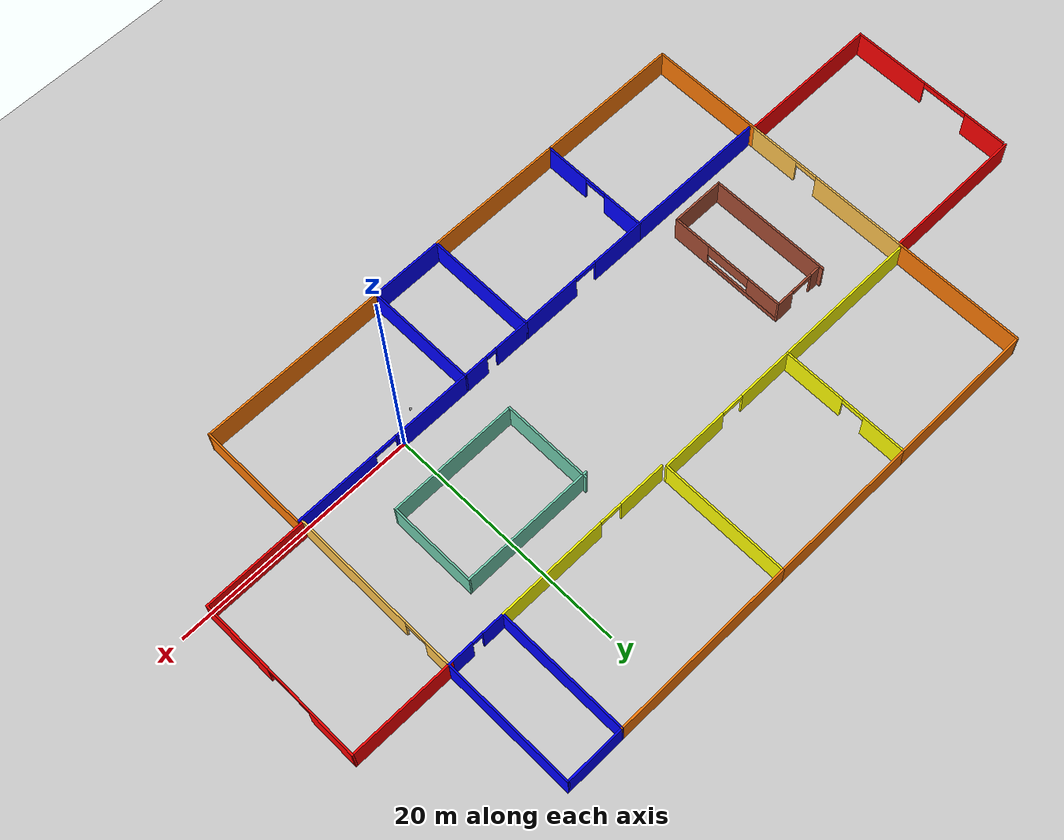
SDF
<sdf version="1.6">
 <world name="default">
  <light name="sun" type="directional">
   <pose>0 0 10 0 -0 0</pose>
   <diffuse>0.8 0.8 0.8 1</diffuse>
   <specular>0.2 0.2 0.2 1</specular>
   <attenuation>
    <range>1000</range>
    <constant>0.9</constant>
    <linear>0.01</linear>
    <quadratic>0.001</quadratic>
   </attenuation>
   <direction>-0.5 0.1 -0.9</direction>
  </light>
  <model name="ground_plane">
   <static>1</static>
   <link name="link">
    <collision name="collision">
     <geometry><plane><normal>0 0 1</normal><size>100 100</size></plane></geometry>
     <surface>
      <contact><collide_bitmask>65535</collide_bitmask></contact>
      <friction><ode><mu>100</mu><mu2>50</mu2></ode></friction>
     </surface>
    </collision>
    <visual name="visual">
     <cast_shadows>0</cast_shadows>
     <geometry><plane><normal>0 0 1</normal><size>100 100</size></plane></geometry>
     <material>
      <script><uri>file://media/materials/scripts/gazebo.material</uri><name>Gazebo/Grey</name></script>
     </material>
    </visual>
   </link>
  </model>
  <gravity>0 0 -9.8</gravity>
  <magnetic_field>6e-06 2.3e-05 -4.2e-05</magnetic_field>
  <atmosphere type="adiabatic"/>
  <physics name="default_physics" default="0" type="ode">
   <max_step_size>0.001</max_step_size>
   <real_time_factor>1</real_time_factor>
   <real_time_update_rate>1000</real_time_update_rate>
  </physics>
  <scene><ambient>0.4 0.4 0.4 1</ambient><background>0.7 0.7 0.7 1</background><shadows>1</shadows></scene>
  <spherical_coordinates>
   <surface_model>EARTH_WGS84</surface_model>
   <latitude_deg>0</latitude_deg>
   <longitude_deg>0</longitude_deg>
   <elevation>0</elevation>
   <heading_deg>0</heading_deg>
  </spherical_coordinates>
  <model name="office">
   <pose>-14.5662 8.1483 0 0 -0 0</pose>
   <link name="Wall_0">
    <collision name="Wall_0_Collision">
     <geometry><box><size>12 0.15 2.5</size></box></geometry>
     <pose>0 0 1.25 0 -0 0</pose>
    </collision>
    <visual name="Wall_0_Visual">
     <pose>0 0 1.25 0 -0 0</pose>
     <geometry><box><size>12 0.15 2.5</size></box></geometry>
     <material>
      <script><uri>file://media/materials/scripts/gazebo.material</uri><name>Gazebo/Grey</name></script>
      <ambient>1 0 0 1</ambient>
     </material>
     <meta><layer>0</layer></meta>
    </visual>
    <pose>-26.25 6.3 0 0 -0 0</pose>
   </link>
   <link name="Wall_1">
    <pose>-20.325 -0.75 0 0 0 -1.5708</pose>
    <visual name="Wall_1_Visual_0">
     <pose>-3.11197 0 1.25 0 -0 0</pose>
     <geometry><box><size>8.02606 0.15 2.5</size></box></geometry>
     <material>
      <script><uri>file://media/materials/scripts/gazebo.material</uri><name>Gazebo/Grey</name></script>
      <ambient>1 0.764706 0.305882 1</ambient>
     </material>
     <meta><layer>0</layer></meta>
    </visual>
    <collision name="Wall_1_Collision_0">
     <geometry><box><size>8.02606 0.15 2.5</size></box></geometry>
     <pose>-3.11197 0 1.25 0 -0 0</pose>
    </collision>
    <visual name="Wall_1_Visual_1">
     <pose>4.96303 0 1.25 0 -0 0</pose>
     <geometry><box><size>4.32394 0.15 2.5</size></box></geometry>
     <material>
      <script><uri>file://media/materials/scripts/gazebo.material</uri><name>Gazebo/Grey</name></script>
      <ambient>1 0.764706 0.305882 1</ambient>
     </material>
     <meta><layer>0</layer></meta>
    </visual>
    <collision name="Wall_1_Collision_1">
     <geometry><box><size>4.32394 0.15 2.5</size></box></geometry>
     <pose>4.96303 0 1.25 0 -0 0</pose>
    </collision>
    <visual name="Wall_1_Visual_2">
     <pose>1.85106 0 2.25 0 -0 0</pose>
     <geometry><box><size>1.9 0.15 0.5</size></box></geometry>
     <material>
      <script><uri>file://media/materials/scripts/gazebo.material</uri><name>Gazebo/Grey</name></script>
      <ambient>1 0.764706 0.305882 1</ambient>
     </material>
     <meta><layer>0</layer></meta>
    </visual>
    <collision name="Wall_1_Collision_2">
     <geometry><box><size>1.9 0.15 0.5</size></box></geometry>
     <pose>1.85106 0 2.25 0 -0 0</pose>
    </collision>
   </link>
   <link name="Wall_10">
    <collision name="Wall_10_Collision">
     <geometry><box><size>12.25 0.15 2.5</size></box></geometry>
     <pose>0 0 1.25 0 -0 0</pose>
    </collision>
    <visual name="Wall_10_Visual">
     <pose>0 0 1.25 0 -0 0</pose>
     <geometry><box><size>12.25 0.15 2.5</size></box></geometry>
     <material>
      <script><uri>file://media/materials/scripts/gazebo.material</uri><name>Gazebo/Grey</name></script>
      <ambient>0.996078 0.47451 0.0196078 1</ambient>
     </material>
     <meta><layer>0</layer></meta>
    </visual>
    <pose>-2.175 17.15 0 0 -0 0</pose>
   </link>
   <link name="Wall_11">
    <collision name="Wall_11_Collision">
     <geometry><box><size>10.75 0.15 2.5</size></box></geometry>
     <pose>0 0 1.25 0 -0 0</pose>
    </collision>
    <visual name="Wall_11_Visual">
     <pose>0 0 1.25 0 -0 0</pose>
     <geometry><box><size>10.75 0.15 2.5</size></box></geometry>
     <material>
      <script><uri>file://media/materials/scripts/gazebo.material</uri><name>Gazebo/Grey</name></script>
      <ambient>1 1 0 1</ambient>
     </material>
     <meta><layer>0</layer></meta>
    </visual>
    <pose>3.875 11.85 0 0 0 -1.5708</pose>
   </link>
   <link name="Wall_12">
    <pose>-2.175 6.55 0 0 -0 3.14159</pose>
    <visual name="Wall_12_Visual_0">
     <pose>-3.31471 0 1.25 0 -0 0</pose>
     <geometry><box><size>5.62058 0.15 2.5</size></box></geometry>
     <material>
      <script><uri>file://media/materials/scripts/gazebo.material</uri><name>Gazebo/Grey</name></script>
      <ambient>1 1 0 1</ambient>
     </material>
     <meta><layer>0</layer></meta>
    </visual>
    <collision name="Wall_12_Collision_0">
     <geometry><box><size>5.62058 0.15 2.5</size></box></geometry>
     <pose>-3.31471 0 1.25 0 -0 0</pose>
    </collision>
    <visual name="Wall_12_Visual_1">
     <pose>3.76029 0 1.25 0 -0 0</pose>
     <geometry><box><size>4.72942 0.15 2.5</size></box></geometry>
     <material>
      <script><uri>file://media/materials/scripts/gazebo.material</uri><name>Gazebo/Grey</name></script>
      <ambient>1 1 0 1</ambient>
     </material>
     <meta><layer>0</layer></meta>
    </visual>
    <collision name="Wall_12_Collision_1">
     <geometry><box><size>4.72942 0.15 2.5</size></box></geometry>
     <pose>3.76029 0 1.25 0 -0 0</pose>
    </collision>
    <visual name="Wall_12_Visual_2">
     <pose>0.44558 0 2.25 0 -0 0</pose>
     <geometry><box><size>1.9 0.15 0.5</size></box></geometry>
     <material>
      <script><uri>file://media/materials/scripts/gazebo.material</uri><name>Gazebo/Grey</name></script>
      <ambient>1 1 0 1</ambient>
     </material>
     <meta><layer>0</layer></meta>
    </visual>
    <collision name="Wall_12_Collision_2">
     <geometry><box><size>1.9 0.15 0.5</size></box></geometry>
     <pose>0.44558 0 2.25 0 -0 0</pose>
    </collision>
   </link>
   <link name="Wall_14">
    <collision name="Wall_14_Collision">
     <geometry><box><size>15.25 0.15 2.5</size></box></geometry>
     <pose>0 0 1.25 0 -0 0</pose>
    </collision>
    <visual name="Wall_14_Visual">
     <pose>0 0 1.25 0 -0 0</pose>
     <geometry><box><size>15.25 0.15 2.5</size></box></geometry>
     <material>
      <script><uri>file://media/materials/scripts/gazebo.material</uri><name>Gazebo/Grey</name></script>
      <ambient>0.996078 0.47451 0.0196078 1</ambient>
     </material>
     <meta><layer>0</layer></meta>
    </visual>
    <pose>11.425 17.15 0 0 -0 0</pose>
   </link>
   <link name="Wall_15">
    <collision name="Wall_15_Collision">
     <geometry><box><size>11 0.15 2.5</size></box></geometry>
     <pose>0 0 1.25 0 -0 0</pose>
    </collision>
    <visual name="Wall_15_Visual">
     <pose>0 0 1.25 0 -0 0</pose>
     <geometry><box><size>11 0.15 2.5</size></box></geometry>
     <material>
      <script><uri>file://media/materials/scripts/gazebo.material</uri><name>Gazebo/Grey</name></script>
      <ambient>0 0 1 1</ambient>
     </material>
     <meta><layer>0</layer></meta>
    </visual>
    <pose>18.975 11.725 0 0 0 -1.5708</pose>
   </link>
   <link name="Wall_17">
    <pose>11.55 6.3 0 0 -0 3.14159</pose>
    <visual name="Wall_17_Visual_0">
     <pose>-2.94841 0 1.25 0 -0 0</pose>
     <geometry><box><size>9.10319 0.15 2.5</size></box></geometry>
     <material>
      <script><uri>file://media/materials/scripts/gazebo.material</uri><name>Gazebo/Grey</name></script>
      <ambient>1 1 0 1</ambient>
     </material>
     <meta><layer>0</layer></meta>
    </visual>
    <collision name="Wall_17_Collision_0">
     <geometry><box><size>9.10319 0.15 2.5</size></box></geometry>
     <pose>-2.94841 0 1.25 0 -0 0</pose>
    </collision>
    <visual name="Wall_17_Visual_1">
     <pose>5.50159 0 1.25 0 -0 0</pose>
     <geometry><box><size>3.99681 0.15 2.5</size></box></geometry>
     <material>
      <script><uri>file://media/materials/scripts/gazebo.material</uri><name>Gazebo/Grey</name></script>
      <ambient>1 1 0 1</ambient>
     </material>
     <meta><layer>0</layer></meta>
    </visual>
    <collision name="Wall_17_Collision_1">
     <geometry><box><size>3.99681 0.15 2.5</size></box></geometry>
     <pose>5.50159 0 1.25 0 -0 0</pose>
    </collision>
    <visual name="Wall_17_Visual_2">
     <pose>2.55319 0 2.25 0 -0 0</pose>
     <geometry><box><size>1.9 0.15 0.5</size></box></geometry>
     <material>
      <script><uri>file://media/materials/scripts/gazebo.material</uri><name>Gazebo/Grey</name></script>
      <ambient>1 1 0 1</ambient>
     </material>
     <meta><layer>0</layer></meta>
    </visual>
    <collision name="Wall_17_Collision_2">
     <geometry><box><size>1.9 0.15 0.5</size></box></geometry>
     <pose>2.55319 0 2.25 0 -0 0</pose>
    </collision>
   </link>
   <link name="Wall_19">
    <collision name="Wall_19_Collision">
     <geometry><box><size>9.5 0.15 2.5</size></box></geometry>
     <pose>0 0 1.25 0 -0 0</pose>
    </collision>
    <visual name="Wall_19_Visual">
     <pose>0 0 1.25 0 -0 0</pose>
     <geometry><box><size>9.5 0.15 2.5</size></box></geometry>
     <material>
      <script><uri>file://media/materials/scripts/gazebo.material</uri><name>Gazebo/Grey</name></script>
      <ambient>0.996078 0.47451 0.0196078 1</ambient>
     </material>
     <meta><layer>0</layer></meta>
    </visual>
    <pose>-20.325 -12.475 0 0 0 -1.5708</pose>
   </link>
   <link name="Wall_2">
    <collision name="Wall_2_Collision">
     <geometry><box><size>12 0.15 2.5</size></box></geometry>
     <pose>0 0 1.25 0 -0 0</pose>
    </collision>
    <visual name="Wall_2_Visual">
     <pose>0 0 1.25 0 -0 0</pose>
     <geometry><box><size>12 0.15 2.5</size></box></geometry>
     <material>
      <script><uri>file://media/materials/scripts/gazebo.material</uri><name>Gazebo/Grey</name></script>
      <ambient>1 0 0 1</ambient>
     </material>
     <meta><layer>0</layer></meta>
    </visual>
    <pose>-26.25 -7.8 0 0 -0 3.14159</pose>
   </link>
   <link name="Wall_20">
    <collision name="Wall_20_Collision">
     <geometry><box><size>12 0.15 2.5</size></box></geometry>
     <pose>0 0 1.25 0 -0 0</pose>
    </collision>
    <visual name="Wall_20_Visual">
     <pose>0 0 1.25 0 -0 0</pose>
     <geometry><box><size>12 0.15 2.5</size></box></geometry>
     <material>
      <script><uri>file://media/materials/scripts/gazebo.material</uri><name>Gazebo/Grey</name></script>
      <ambient>0.996078 0.47451 0.0196078 1</ambient>
     </material>
     <meta><layer>0</layer></meta>
    </visual>
    <pose>-14.4 -17.15 0 0 -0 0</pose>
   </link>
   <link name="Wall_21">
    <pose>-8.475 -12.6 0 0 -0 1.5708</pose>
    <visual name="Wall_21_Visual_0">
     <pose>-2.70856 0 1.25 0 -0 0</pose>
     <geometry><box><size>3.83288 0.15 2.5</size></box></geometry>
     <material>
      <script><uri>file://media/materials/scripts/gazebo.material</uri><name>Gazebo/Grey</name></script>
      <ambient>0 0 1 1</ambient>
     </material>
     <meta><layer>0</layer></meta>
    </visual>
    <collision name="Wall_21_Collision_0">
     <geometry><box><size>3.83288 0.15 2.5</size></box></geometry>
     <pose>-2.70856 0 1.25 0 -0 0</pose>
    </collision>
    <visual name="Wall_21_Visual_1">
     <pose>2.86644 0 1.25 0 -0 0</pose>
     <geometry><box><size>3.51712 0.15 2.5</size></box></geometry>
     <material>
      <script><uri>file://media/materials/scripts/gazebo.material</uri><name>Gazebo/Grey</name></script>
      <ambient>0 0 1 1</ambient>
     </material>
     <meta><layer>0</layer></meta>
    </visual>
    <collision name="Wall_21_Collision_1">
     <geometry><box><size>3.51712 0.15 2.5</size></box></geometry>
     <pose>2.86644 0 1.25 0 -0 0</pose>
    </collision>
    <visual name="Wall_21_Visual_2">
     <pose>0.15788 0 2.25 0 -0 0</pose>
     <geometry><box><size>1.9 0.15 0.5</size></box></geometry>
     <material>
      <script><uri>file://media/materials/scripts/gazebo.material</uri><name>Gazebo/Grey</name></script>
      <ambient>0 0 1 1</ambient>
     </material>
     <meta><layer>0</layer></meta>
    </visual>
    <collision name="Wall_21_Collision_2">
     <geometry><box><size>1.9 0.15 0.5</size></box></geometry>
     <pose>0.15788 0 2.25 0 -0 0</pose>
    </collision>
   </link>
   <link name="Wall_22">
    <collision name="Wall_22_Collision">
     <geometry><box><size>11.75 0.15 2.5</size></box></geometry>
     <pose>0 0 1.25 0 -0 0</pose>
    </collision>
    <visual name="Wall_22_Visual">
     <pose>0 0 1.25 0 -0 0</pose>
     <geometry><box><size>11.75 0.15 2.5</size></box></geometry>
     <material>
      <script><uri>file://media/materials/scripts/gazebo.material</uri><name>Gazebo/Grey</name></script>
      <ambient>0 0 1 1</ambient>
     </material>
     <meta><layer>0</layer></meta>
    </visual>
    <pose>-14.275 -8.05 0 0 -0 3.14159</pose>
   </link>
   <link name="Wall_24">
    <collision name="Wall_24_Collision">
     <geometry><box><size>11.5 0.15 2.5</size></box></geometry>
     <pose>0 0 1.25 0 -0 0</pose>
    </collision>
    <visual name="Wall_24_Visual">
     <pose>0 0 1.25 0 -0 0</pose>
     <geometry><box><size>11.5 0.15 2.5</size></box></geometry>
     <material>
      <script><uri>file://media/materials/scripts/gazebo.material</uri><name>Gazebo/Grey</name></script>
      <ambient>0.996078 0.47451 0.0196078 1</ambient>
     </material>
     <meta><layer>0</layer></meta>
    </visual>
    <pose>-2.8 -17.15 0 0 -0 0</pose>
   </link>
   <link name="Wall_25">
    <collision name="Wall_25_Collision">
     <geometry><box><size>9.25 0.15 2.5</size></box></geometry>
     <pose>0 0 1.25 0 -0 0</pose>
    </collision>
    <visual name="Wall_25_Visual">
     <pose>0 0 1.25 0 -0 0</pose>
     <geometry><box><size>9.25 0.15 2.5</size></box></geometry>
     <material>
      <script><uri>file://media/materials/scripts/gazebo.material</uri><name>Gazebo/Grey</name></script>
      <ambient>0 0 1 1</ambient>
     </material>
     <meta><layer>0</layer></meta>
    </visual>
    <pose>2.875 -12.6 0 0 -0 1.5708</pose>
   </link>
   <link name="Wall_26">
    <pose>-2.8 -8.05 0 0 -0 3.14159</pose>
    <visual name="Wall_26_Visual_0">
     <pose>-3.24966 0 1.25 0 -0 0</pose>
     <geometry><box><size>5.00067 0.15 2.5</size></box></geometry>
     <material>
      <script><uri>file://media/materials/scripts/gazebo.material</uri><name>Gazebo/Grey</name></script>
      <ambient>0 0 1 1</ambient>
     </material>
     <meta><layer>0</layer></meta>
    </visual>
    <collision name="Wall_26_Collision_0">
     <geometry><box><size>5.00067 0.15 2.5</size></box></geometry>
     <pose>-3.24966 0 1.25 0 -0 0</pose>
    </collision>
    <visual name="Wall_26_Visual_1">
     <pose>3.45034 0 1.25 0 -0 0</pose>
     <geometry><box><size>4.59933 0.15 2.5</size></box></geometry>
     <material>
      <script><uri>file://media/materials/scripts/gazebo.material</uri><name>Gazebo/Grey</name></script>
      <ambient>0 0 1 1</ambient>
     </material>
     <meta><layer>0</layer></meta>
    </visual>
    <collision name="Wall_26_Collision_1">
     <geometry><box><size>4.59933 0.15 2.5</size></box></geometry>
     <pose>3.45034 0 1.25 0 -0 0</pose>
    </collision>
    <visual name="Wall_26_Visual_2">
     <pose>0.200672 0 2.25 0 -0 0</pose>
     <geometry><box><size>1.9 0.15 0.5</size></box></geometry>
     <material>
      <script><uri>file://media/materials/scripts/gazebo.material</uri><name>Gazebo/Grey</name></script>
      <ambient>0 0 1 1</ambient>
     </material>
     <meta><layer>0</layer></meta>
    </visual>
    <collision name="Wall_26_Collision_2">
     <geometry><box><size>1.9 0.15 0.5</size></box></geometry>
     <pose>0.200672 0 2.25 0 -0 0</pose>
    </collision>
   </link>
   <link name="Wall_28">
    <pose>5.8 -8.05 0 0 -0 0</pose>
    <visual name="Wall_28_Visual_0">
     <pose>-1.49659 0 1.25 0 -0 0</pose>
     <geometry><box><size>3.00683 0.15 2.5</size></box></geometry>
     <material>
      <script><uri>file://media/materials/scripts/gazebo.material</uri><name>Gazebo/Grey</name></script>
      <ambient>0 0 1 1</ambient>
     </material>
     <meta><layer>0</layer></meta>
    </visual>
    <collision name="Wall_28_Collision_0">
     <geometry><box><size>3.00683 0.15 2.5</size></box></geometry>
     <pose>-1.49659 0 1.25 0 -0 0</pose>
    </collision>
    <visual name="Wall_28_Visual_1">
     <pose>1.95341 0 1.25 0 -0 0</pose>
     <geometry><box><size>2.09317 0.15 2.5</size></box></geometry>
     <material>
      <script><uri>file://media/materials/scripts/gazebo.material</uri><name>Gazebo/Grey</name></script>
      <ambient>0 0 1 1</ambient>
     </material>
     <meta><layer>0</layer></meta>
    </visual>
    <collision name="Wall_28_Collision_1">
     <geometry><box><size>2.09317 0.15 2.5</size></box></geometry>
     <pose>1.95341 0 1.25 0 -0 0</pose>
    </collision>
    <visual name="Wall_28_Visual_2">
     <pose>0.456828 0 2.25 0 -0 0</pose>
     <geometry><box><size>0.9 0.15 0.5</size></box></geometry>
     <material>
      <script><uri>file://media/materials/scripts/gazebo.material</uri><name>Gazebo/Grey</name></script>
      <ambient>0 0 1 1</ambient>
     </material>
     <meta><layer>0</layer></meta>
    </visual>
    <collision name="Wall_28_Collision_2">
     <geometry><box><size>0.9 0.15 0.5</size></box></geometry>
     <pose>0.456828 0 2.25 0 -0 0</pose>
    </collision>
   </link>
   <link name="Wall_29">
    <collision name="Wall_29_Collision">
     <geometry><box><size>9.25 0.15 2.5</size></box></geometry>
     <pose>0 0 1.25 0 -0 0</pose>
    </collision>
    <visual name="Wall_29_Visual">
     <pose>0 0 1.25 0 -0 0</pose>
     <geometry><box><size>9.25 0.15 2.5</size></box></geometry>
     <material>
      <script><uri>file://media/materials/scripts/gazebo.material</uri><name>Gazebo/Grey</name></script>
      <ambient>0 0 1 1</ambient>
     </material>
     <meta><layer>0</layer></meta>
    </visual>
    <pose>8.725 -12.6 0 0 0 -1.5708</pose>
   </link>
   <link name="Wall_3">
    <pose>-32.175 -0.875 0 0 -0 1.5708</pose>
    <visual name="Wall_3_Visual_0">
     <pose>-3.76566 0 1.25 0 -0 0</pose>
     <geometry><box><size>6.46867 0.15 2.5</size></box></geometry>
     <material>
      <script><uri>file://media/materials/scripts/gazebo.material</uri><name>Gazebo/Grey</name></script>
      <ambient>1 0 0 1</ambient>
     </material>
     <meta><layer>0</layer></meta>
    </visual>
    <collision name="Wall_3_Collision_0">
     <geometry><box><size>6.46867 0.15 2.5</size></box></geometry>
     <pose>-3.76566 0 1.25 0 -0 0</pose>
    </collision>
    <visual name="Wall_3_Visual_1">
     <pose>5.18434 0 1.25 0 -0 0</pose>
     <geometry><box><size>3.63133 0.15 2.5</size></box></geometry>
     <material>
      <script><uri>file://media/materials/scripts/gazebo.material</uri><name>Gazebo/Grey</name></script>
      <ambient>1 0 0 1</ambient>
     </material>
     <meta><layer>0</layer></meta>
    </visual>
    <collision name="Wall_3_Collision_1">
     <geometry><box><size>3.63133 0.15 2.5</size></box></geometry>
     <pose>5.18434 0 1.25 0 -0 0</pose>
    </collision>
    <visual name="Wall_3_Visual_2">
     <pose>1.41867 0 2.25 0 -0 0</pose>
     <geometry><box><size>3.9 0.15 0.5</size></box></geometry>
     <material>
      <script><uri>file://media/materials/scripts/gazebo.material</uri><name>Gazebo/Grey</name></script>
      <ambient>1 0 0 1</ambient>
     </material>
     <meta><layer>0</layer></meta>
    </visual>
    <collision name="Wall_3_Collision_2">
     <geometry><box><size>3.9 0.15 0.5</size></box></geometry>
     <pose>1.41867 0 2.25 0 -0 0</pose>
    </collision>
   </link>
   <link name="Wall_32">
    <collision name="Wall_32_Collision">
     <geometry><box><size>6 0.15 2.5</size></box></geometry>
     <pose>0 0 1.25 0 -0 0</pose>
    </collision>
    <visual name="Wall_32_Visual">
     <pose>0 0 1.25 0 -0 0</pose>
     <geometry><box><size>6 0.15 2.5</size></box></geometry>
     <material>
      <script><uri>file://media/materials/scripts/gazebo.material</uri><name>Gazebo/Grey</name></script>
      <ambient>0 0 1 1</ambient>
     </material>
     <meta><layer>0</layer></meta>
    </visual>
    <pose>5.8 -17.15 0 0 -0 3.14159</pose>
   </link>
   <link name="Wall_34">
    <pose>16.4 -8.05 0 0 -0 0</pose>
    <visual name="Wall_34_Visual_0">
     <pose>-4.44899 0 1.25 0 -0 0</pose>
     <geometry><box><size>6.60203 0.15 2.5</size></box></geometry>
     <material>
      <script><uri>file://media/materials/scripts/gazebo.material</uri><name>Gazebo/Grey</name></script>
      <ambient>0 0 1 1</ambient>
     </material>
     <meta><layer>0</layer></meta>
    </visual>
    <collision name="Wall_34_Collision_0">
     <geometry><box><size>6.60203 0.15 2.5</size></box></geometry>
     <pose>-4.44899 0 1.25 0 -0 0</pose>
    </collision>
    <visual name="Wall_34_Visual_1">
     <pose>4.25101 0 1.25 0 -0 0</pose>
     <geometry><box><size>6.99797 0.15 2.5</size></box></geometry>
     <material>
      <script><uri>file://media/materials/scripts/gazebo.material</uri><name>Gazebo/Grey</name></script>
      <ambient>0 0 1 1</ambient>
     </material>
     <meta><layer>0</layer></meta>
    </visual>
    <collision name="Wall_34_Collision_1">
     <geometry><box><size>6.99797 0.15 2.5</size></box></geometry>
     <pose>4.25101 0 1.25 0 -0 0</pose>
    </collision>
    <visual name="Wall_34_Visual_2">
     <pose>-0.197972 0 2.25 0 -0 0</pose>
     <geometry><box><size>1.9 0.15 0.5</size></box></geometry>
     <material>
      <script><uri>file://media/materials/scripts/gazebo.material</uri><name>Gazebo/Grey</name></script>
      <ambient>0 0 1 1</ambient>
     </material>
     <meta><layer>0</layer></meta>
    </visual>
    <collision name="Wall_34_Collision_2">
     <geometry><box><size>1.9 0.15 0.5</size></box></geometry>
     <pose>-0.197972 0 2.25 0 -0 0</pose>
    </collision>
   </link>
   <link name="Wall_35">
    <collision name="Wall_35_Collision">
     <geometry><box><size>9.25 0.15 2.5</size></box></geometry>
     <pose>0 0 1.25 0 -0 0</pose>
    </collision>
    <visual name="Wall_35_Visual">
     <pose>0 0 1.25 0 -0 0</pose>
     <geometry><box><size>9.25 0.15 2.5</size></box></geometry>
     <material>
      <script><uri>file://media/materials/scripts/gazebo.material</uri><name>Gazebo/Grey</name></script>
      <ambient>0.996078 0.47451 0.0196078 1</ambient>
     </material>
     <meta><layer>0</layer></meta>
    </visual>
    <pose>24.075 -12.6 0 0 0 -1.5708</pose>
   </link>
   <link name="Wall_36">
    <collision name="Wall_36_Collision">
     <geometry><box><size>15.5 0.15 2.5</size></box></geometry>
     <pose>0 0 1.25 0 -0 0</pose>
    </collision>
    <visual name="Wall_36_Visual">
     <pose>0 0 1.25 0 -0 0</pose>
     <geometry><box><size>15.5 0.15 2.5</size></box></geometry>
     <material>
      <script><uri>file://media/materials/scripts/gazebo.material</uri><name>Gazebo/Grey</name></script>
      <ambient>0.996078 0.47451 0.0196078 1</ambient>
     </material>
     <meta><layer>0</layer></meta>
    </visual>
    <pose>16.4 -17.15 0 0 -0 3.14159</pose>
   </link>
   <link name="Wall_38">
    <collision name="Wall_38_Collision">
     <geometry><box><size>5 0.15 2.5</size></box></geometry>
     <pose>0 0 1.25 0 -0 0</pose>
    </collision>
    <visual name="Wall_38_Visual">
     <pose>0 0 1.25 0 -0 0</pose>
     <geometry><box><size>5 0.15 2.5</size></box></geometry>
     <material>
      <script><uri>file://media/materials/scripts/gazebo.material</uri><name>Gazebo/Grey</name></script>
      <ambient>0 0 1 1</ambient>
     </material>
     <meta><layer>0</layer></meta>
    </visual>
    <pose>21.4 17.15 0 0 -0 0</pose>
   </link>
   <link name="Wall_39">
    <collision name="Wall_39_Collision">
     <geometry><box><size>11 0.15 2.5</size></box></geometry>
     <pose>0 0 1.25 0 -0 0</pose>
    </collision>
    <visual name="Wall_39_Visual">
     <pose>0 0 1.25 0 -0 0</pose>
     <geometry><box><size>11 0.15 2.5</size></box></geometry>
     <material>
      <script><uri>file://media/materials/scripts/gazebo.material</uri><name>Gazebo/Grey</name></script>
      <ambient>0 0 1 1</ambient>
     </material>
     <meta><layer>0</layer></meta>
    </visual>
    <pose>23.825 11.725 0 0 0 -1.5708</pose>
   </link>
   <link name="Wall_40">
    <pose>21.4 6.3 0 0 -0 3.14159</pose>
    <visual name="Wall_40_Visual_0">
     <pose>-1.42993 0 1.25 0 -0 0</pose>
     <geometry><box><size>2.14014 0.15 2.5</size></box></geometry>
     <material>
      <script><uri>file://media/materials/scripts/gazebo.material</uri><name>Gazebo/Grey</name></script>
      <ambient>0 0 1 1</ambient>
     </material>
     <meta><layer>0</layer></meta>
    </visual>
    <collision name="Wall_40_Collision_0">
     <geometry><box><size>2.14014 0.15 2.5</size></box></geometry>
     <pose>-1.42993 0 1.25 0 -0 0</pose>
    </collision>
    <visual name="Wall_40_Visual_1">
     <pose>1.52007 0 1.25 0 -0 0</pose>
     <geometry><box><size>1.95985 0.15 2.5</size></box></geometry>
     <material>
      <script><uri>file://media/materials/scripts/gazebo.material</uri><name>Gazebo/Grey</name></script>
      <ambient>0 0 1 1</ambient>
     </material>
     <meta><layer>0</layer></meta>
    </visual>
    <collision name="Wall_40_Collision_1">
     <geometry><box><size>1.95985 0.15 2.5</size></box></geometry>
     <pose>1.52007 0 1.25 0 -0 0</pose>
    </collision>
    <visual name="Wall_40_Visual_2">
     <pose>0.090145 0 2.25 0 -0 0</pose>
     <geometry><box><size>0.9 0.15 0.5</size></box></geometry>
     <material>
      <script><uri>file://media/materials/scripts/gazebo.material</uri><name>Gazebo/Grey</name></script>
      <ambient>0 0 1 1</ambient>
     </material>
     <meta><layer>0</layer></meta>
    </visual>
    <collision name="Wall_40_Collision_2">
     <geometry><box><size>0.9 0.15 0.5</size></box></geometry>
     <pose>0.090145 0 2.25 0 -0 0</pose>
    </collision>
   </link>
   <link name="Wall_42">
    <pose>23.825 -0.75 0 0 0 -1.5708</pose>
    <visual name="Wall_42_Visual_0">
     <pose>-5.99893 0 1.25 0 -0 0</pose>
     <geometry><box><size>2.25214 0.15 2.5</size></box></geometry>
     <material>
      <script><uri>file://media/materials/scripts/gazebo.material</uri><name>Gazebo/Grey</name></script>
      <ambient>1 0.764706 0.305882 1</ambient>
     </material>
     <meta><layer>0</layer></meta>
    </visual>
    <collision name="Wall_42_Collision_0">
     <geometry><box><size>2.25214 0.15 2.5</size></box></geometry>
     <pose>-5.99893 0 1.25 0 -0 0</pose>
    </collision>
    <visual name="Wall_42_Visual_1">
     <pose>2.07607 0 1.25 0 -0 0</pose>
     <geometry><box><size>10.0979 0.15 2.5</size></box></geometry>
     <material>
      <script><uri>file://media/materials/scripts/gazebo.material</uri><name>Gazebo/Grey</name></script>
      <ambient>1 0.764706 0.305882 1</ambient>
     </material>
     <meta><layer>0</layer></meta>
    </visual>
    <collision name="Wall_42_Collision_1">
     <geometry><box><size>10.0979 0.15 2.5</size></box></geometry>
     <pose>2.07607 0 1.25 0 -0 0</pose>
    </collision>
    <visual name="Wall_42_Visual_2">
     <pose>-3.92286 0 2.25 0 -0 0</pose>
     <geometry><box><size>1.9 0.15 0.5</size></box></geometry>
     <material>
      <script><uri>file://media/materials/scripts/gazebo.material</uri><name>Gazebo/Grey</name></script>
      <ambient>1 0.764706 0.305882 1</ambient>
     </material>
     <meta><layer>0</layer></meta>
    </visual>
    <collision name="Wall_42_Collision_2">
     <geometry><box><size>1.9 0.15 0.5</size></box></geometry>
     <pose>-3.92286 0 2.25 0 -0 0</pose>
    </collision>
   </link>
   <link name="Wall_43">
    <collision name="Wall_43_Collision">
     <geometry><box><size>8.5 0.15 2.5</size></box></geometry>
     <pose>0 0 1.25 0 -0 0</pose>
    </collision>
    <visual name="Wall_43_Visual">
     <pose>0 0 1.25 0 -0 0</pose>
     <geometry><box><size>8.5 0.15 2.5</size></box></geometry>
     <material>
      <script><uri>file://media/materials/scripts/gazebo.material</uri><name>Gazebo/Grey</name></script>
      <ambient>1 0 0 1</ambient>
     </material>
     <meta><layer>0</layer></meta>
    </visual>
    <pose>28 -7.8 0 0 -0 0</pose>
   </link>
   <link name="Wall_44">
    <pose>32.175 -0.75 0 0 -0 1.5708</pose>
    <visual name="Wall_44_Visual_0">
     <pose>-4.06556 0 1.25 0 -0 0</pose>
     <geometry><box><size>6.11887 0.15 2.5</size></box></geometry>
     <material>
      <script><uri>file://media/materials/scripts/gazebo.material</uri><name>Gazebo/Grey</name></script>
      <ambient>1 0 0 1</ambient>
     </material>
     <meta><layer>0</layer></meta>
    </visual>
    <collision name="Wall_44_Collision_0">
     <geometry><box><size>6.11887 0.15 2.5</size></box></geometry>
     <pose>-4.06556 0 1.25 0 -0 0</pose>
    </collision>
    <visual name="Wall_44_Visual_1">
     <pose>5.00944 0 1.25 0 -0 0</pose>
     <geometry><box><size>4.23113 0.15 2.5</size></box></geometry>
     <material>
      <script><uri>file://media/materials/scripts/gazebo.material</uri><name>Gazebo/Grey</name></script>
      <ambient>1 0 0 1</ambient>
     </material>
     <meta><layer>0</layer></meta>
    </visual>
    <collision name="Wall_44_Collision_1">
     <geometry><box><size>4.23113 0.15 2.5</size></box></geometry>
     <pose>5.00944 0 1.25 0 -0 0</pose>
    </collision>
    <visual name="Wall_44_Visual_2">
     <pose>0.943871 0 2.25 0 -0 0</pose>
     <geometry><box><size>3.9 0.15 0.5</size></box></geometry>
     <material>
      <script><uri>file://media/materials/scripts/gazebo.material</uri><name>Gazebo/Grey</name></script>
      <ambient>1 0 0 1</ambient>
     </material>
     <meta><layer>0</layer></meta>
    </visual>
    <collision name="Wall_44_Collision_2">
     <geometry><box><size>3.9 0.15 0.5</size></box></geometry>
     <pose>0.943871 0 2.25 0 -0 0</pose>
    </collision>
   </link>
   <link name="Wall_45">
    <collision name="Wall_45_Collision">
     <geometry><box><size>8.75 0.15 2.5</size></box></geometry>
     <pose>0 0 1.25 0 -0 0</pose>
    </collision>
    <visual name="Wall_45_Visual">
     <pose>0 0 1.25 0 -0 0</pose>
     <geometry><box><size>8.75 0.15 2.5</size></box></geometry>
     <material>
      <script><uri>file://media/materials/scripts/gazebo.material</uri><name>Gazebo/Grey</name></script>
      <ambient>1 0 0 1</ambient>
     </material>
     <meta><layer>0</layer></meta>
    </visual>
    <pose>27.875 6.3 0 0 -0 3.14159</pose>
   </link>
   <link name="Wall_47">
    <collision name="Wall_47_Collision">
     <geometry><box><size>10.25 0.15 2.5</size></box></geometry>
     <pose>0 0 1.25 0 -0 0</pose>
    </collision>
    <visual name="Wall_47_Visual">
     <pose>0 0 1.25 0 -0 0</pose>
     <geometry><box><size>10.25 0.15 2.5</size></box></geometry>
     <material>
      <script><uri>file://media/materials/scripts/gazebo.material</uri><name>Gazebo/Bricks</name></script>
      <ambient>1 0.333333 1 1</ambient>
     </material>
     <meta><layer>0</layer></meta>
    </visual>
    <pose>-14.9775 -1.28816 0 0 0 -1.5708</pose>
   </link>
   <link name="Wall_48">
    <collision name="Wall_48_Collision">
     <geometry><box><size>4.5 0.15 2.5</size></box></geometry>
     <pose>0 0 1.25 0 -0 0</pose>
    </collision>
    <visual name="Wall_48_Visual">
     <pose>0 0 1.25 0 -0 0</pose>
     <geometry><box><size>4.5 0.15 2.5</size></box></geometry>
     <material>
      <script><uri>file://media/materials/scripts/gazebo.material</uri><name>Gazebo/Bricks</name></script>
      <ambient>1 0.333333 1 1</ambient>
     </material>
     <meta><layer>0</layer></meta>
    </visual>
    <pose>-12.8025 -6.33816 0 0 -0 0</pose>
   </link>
   <link name="Wall_49">
    <pose>-10.6275 -1.41316 0 0 -0 1.5708</pose>
    <visual name="Wall_49_Visual_0">
     <pose>-3.38995 0 1.25 0 -0 0</pose>
     <geometry><box><size>3.2201 0.15 2.5</size></box></geometry>
     <material>
      <script><uri>file://media/materials/scripts/gazebo.material</uri><name>Gazebo/Bricks</name></script>
      <ambient>1 0.333333 1 1</ambient>
     </material>
     <meta><layer>0</layer></meta>
    </visual>
    <collision name="Wall_49_Collision_0">
     <geometry><box><size>3.2201 0.15 2.5</size></box></geometry>
     <pose>-3.38995 0 1.25 0 -0 0</pose>
    </collision>
    <visual name="Wall_49_Visual_1">
     <pose>1.61005 0 0.25 0 -0 0</pose>
     <geometry><box><size>6.7799 0.15 0.5</size></box></geometry>
     <material>
      <script><uri>file://media/materials/scripts/gazebo.material</uri><name>Gazebo/Bricks</name></script>
      <ambient>1 0.333333 1 1</ambient>
     </material>
     <meta><layer>0</layer></meta>
    </visual>
    <collision name="Wall_49_Collision_1">
     <geometry><box><size>6.7799 0.15 0.5</size></box></geometry>
     <pose>1.61005 0 0.25 0 -0 0</pose>
    </collision>
    <visual name="Wall_49_Visual_2">
     <pose>3.51005 0 1.5 0 -0 0</pose>
     <geometry><box><size>2.9799 0.15 2</size></box></geometry>
     <material>
      <script><uri>file://media/materials/scripts/gazebo.material</uri><name>Gazebo/Bricks</name></script>
      <ambient>1 0.333333 1 1</ambient>
     </material>
     <meta><layer>0</layer></meta>
    </visual>
    <collision name="Wall_49_Collision_2">
     <geometry><box><size>2.9799 0.15 2</size></box></geometry>
     <pose>3.51005 0 1.5 0 -0 0</pose>
    </collision>
    <visual name="Wall_49_Visual_3">
     <pose>0.120102 0 1.9 0 -0 0</pose>
     <geometry><box><size>3.8 0.15 1.2</size></box></geometry>
     <material>
      <script><uri>file://media/materials/scripts/gazebo.material</uri><name>Gazebo/Bricks</name></script>
      <ambient>1 0.333333 1 1</ambient>
     </material>
     <meta><layer>0</layer></meta>
    </visual>
    <collision name="Wall_49_Collision_3">
     <geometry><box><size>3.8 0.15 1.2</size></box></geometry>
     <pose>0.120102 0 1.9 0 -0 0</pose>
    </collision>
   </link>
   <link name="Wall_5">
    <collision name="Wall_5_Collision">
     <geometry><box><size>11 0.15 2.5</size></box></geometry>
     <pose>0 0 1.25 0 -0 0</pose>
    </collision>
    <visual name="Wall_5_Visual">
     <pose>0 0 1.25 0 -0 0</pose>
     <geometry><box><size>11 0.15 2.5</size></box></geometry>
     <material>
      <script><uri>file://media/materials/scripts/gazebo.material</uri><name>Gazebo/Grey</name></script>
      <ambient>0.996078 0.47451 0.0196078 1</ambient>
     </material>
     <meta><layer>0</layer></meta>
    </visual>
    <pose>-20.325 11.725 0 0 -0 1.5708</pose>
   </link>
   <link name="Wall_50">
    <pose>-12.6775 3.51185 0 0 -0 3.14159</pose>
    <visual name="Wall_50_Visual_0">
     <pose>-1.36093 0 1.25 0 -0 0</pose>
     <geometry><box><size>1.52814 0.15 2.5</size></box></geometry>
     <material>
      <script><uri>file://media/materials/scripts/gazebo.material</uri><name>Gazebo/Bricks</name></script>
      <ambient>1 0.333333 1 1</ambient>
     </material>
     <meta><layer>0</layer></meta>
    </visual>
    <collision name="Wall_50_Collision_0">
     <geometry><box><size>1.52814 0.15 2.5</size></box></geometry>
     <pose>-1.36093 0 1.25 0 -0 0</pose>
    </collision>
    <visual name="Wall_50_Visual_1">
     <pose>1.71407 0 1.25 0 -0 0</pose>
     <geometry><box><size>0.821864 0.15 2.5</size></box></geometry>
     <material>
      <script><uri>file://media/materials/scripts/gazebo.material</uri><name>Gazebo/Bricks</name></script>
      <ambient>1 0.333333 1 1</ambient>
     </material>
     <meta><layer>0</layer></meta>
    </visual>
    <collision name="Wall_50_Collision_1">
     <geometry><box><size>0.821864 0.15 2.5</size></box></geometry>
     <pose>1.71407 0 1.25 0 -0 0</pose>
    </collision>
    <visual name="Wall_50_Visual_2">
     <pose>0.353136 0 2.25 0 -0 0</pose>
     <geometry><box><size>1.9 0.15 0.5</size></box></geometry>
     <material>
      <script><uri>file://media/materials/scripts/gazebo.material</uri><name>Gazebo/Bricks</name></script>
      <ambient>1 0.333333 1 1</ambient>
     </material>
     <meta><layer>0</layer></meta>
    </visual>
    <collision name="Wall_50_Collision_2">
     <geometry><box><size>1.9 0.15 0.5</size></box></geometry>
     <pose>0.353136 0 2.25 0 -0 0</pose>
    </collision>
   </link>
   <link name="Wall_53">
    <collision name="Wall_53_Collision">
     <geometry><box><size>11 0.15 2.5</size></box></geometry>
     <pose>0 0 1.25 0 -0 0</pose>
    </collision>
    <visual name="Wall_53_Visual">
     <pose>0 0 1.25 0 -0 0</pose>
     <geometry><box><size>11 0.15 2.5</size></box></geometry>
     <material>
      <script><uri>file://media/materials/scripts/gazebo.material</uri><name>Gazebo/Grey</name></script>
      <ambient>0.435294 0.796078 0.67451 1</ambient>
     </material>
     <meta><layer>0</layer></meta>
    </visual>
    <pose>13.4644 2.99228 0 0 -0 0</pose>
   </link>
   <link name="Wall_54">
    <collision name="Wall_54_Collision">
     <geometry><box><size>7.25 0.15 2.5</size></box></geometry>
     <pose>0 0 1.25 0 -0 0</pose>
    </collision>
    <visual name="Wall_54_Visual">
     <pose>0 0 1.25 0 -0 0</pose>
     <geometry><box><size>7.25 0.15 2.5</size></box></geometry>
     <material>
      <script><uri>file://media/materials/scripts/gazebo.material</uri><name>Gazebo/Grey</name></script>
      <ambient>0.435294 0.796078 0.67451 1</ambient>
     </material>
     <meta><layer>0</layer></meta>
    </visual>
    <pose>18.8894 -0.557718 0 0 0 -1.5708</pose>
   </link>
   <link name="Wall_55">
    <collision name="Wall_55_Collision">
     <geometry><box><size>10.75 0.15 2.5</size></box></geometry>
     <pose>0 0 1.25 0 -0 0</pose>
    </collision>
    <visual name="Wall_55_Visual">
     <pose>0 0 1.25 0 -0 0</pose>
     <geometry><box><size>10.75 0.15 2.5</size></box></geometry>
     <material>
      <script><uri>file://media/materials/scripts/gazebo.material</uri><name>Gazebo/Grey</name></script>
      <ambient>0.435294 0.796078 0.67451 1</ambient>
     </material>
     <meta><layer>0</layer></meta>
    </visual>
    <pose>13.5894 -4.10772 0 0 -0 3.14159</pose>
   </link>
   <link name="Wall_56">
    <collision name="Wall_56_Collision">
     <geometry><box><size>7.5 0.15 2.5</size></box></geometry>
     <pose>0 0 1.25 0 -0 0</pose>
    </collision>
    <visual name="Wall_56_Visual">
     <pose>0 0 1.25 0 -0 0</pose>
     <geometry><box><size>7.5 0.15 2.5</size></box></geometry>
     <material>
      <script><uri>file://media/materials/scripts/gazebo.material</uri><name>Gazebo/Grey</name></script>
      <ambient>0.435294 0.796078 0.67451 1</ambient>
     </material>
     <meta><layer>0</layer></meta>
    </visual>
    <pose>8.28939 -0.432718 0 0 -0 1.5708</pose>
   </link>
   <link name="Wall_6">
    <collision name="Wall_6_Collision">
     <geometry><box><size>12.25 0.15 2.5</size></box></geometry>
     <pose>0 0 1.25 0 -0 0</pose>
    </collision>
    <visual name="Wall_6_Visual">
     <pose>0 0 1.25 0 -0 0</pose>
     <geometry><box><size>12.25 0.15 2.5</size></box></geometry>
     <material>
      <script><uri>file://media/materials/scripts/gazebo.material</uri><name>Gazebo/Grey</name></script>
      <ambient>0.996078 0.47451 0.0196078 1</ambient>
     </material>
     <meta><layer>0</layer></meta>
    </visual>
    <pose>-14.275 17.15 0 0 -0 0</pose>
   </link>
   <link name="Wall_7">
    <pose>-8.225 11.85 0 0 0 -1.5708</pose>
    <visual name="Wall_7_Visual_0">
     <pose>-3.55436 0 1.25 0 -0 0</pose>
     <geometry><box><size>3.64127 0.15 2.5</size></box></geometry>
     <material>
      <script><uri>file://media/materials/scripts/gazebo.material</uri><name>Gazebo/Grey</name></script>
      <ambient>1 1 0 1</ambient>
     </material>
     <meta><layer>0</layer></meta>
    </visual>
    <collision name="Wall_7_Collision_0">
     <geometry><box><size>3.64127 0.15 2.5</size></box></geometry>
     <pose>-3.55436 0 1.25 0 -0 0</pose>
    </collision>
    <visual name="Wall_7_Visual_1">
     <pose>2.77064 0 1.25 0 -0 0</pose>
     <geometry><box><size>5.20873 0.15 2.5</size></box></geometry>
     <material>
      <script><uri>file://media/materials/scripts/gazebo.material</uri><name>Gazebo/Grey</name></script>
      <ambient>1 1 0 1</ambient>
     </material>
     <meta><layer>0</layer></meta>
    </visual>
    <collision name="Wall_7_Collision_1">
     <geometry><box><size>5.20873 0.15 2.5</size></box></geometry>
     <pose>2.77064 0 1.25 0 -0 0</pose>
    </collision>
    <visual name="Wall_7_Visual_2">
     <pose>-0.783726 0 2.25 0 -0 0</pose>
     <geometry><box><size>1.9 0.15 0.5</size></box></geometry>
     <material>
      <script><uri>file://media/materials/scripts/gazebo.material</uri><name>Gazebo/Grey</name></script>
      <ambient>1 1 0 1</ambient>
     </material>
     <meta><layer>0</layer></meta>
    </visual>
    <collision name="Wall_7_Collision_2">
     <geometry><box><size>1.9 0.15 0.5</size></box></geometry>
     <pose>-0.783726 0 2.25 0 -0 0</pose>
    </collision>
   </link>
   <link name="Wall_8">
    <collision name="Wall_8_Collision">
     <geometry><box><size>12 0.15 2.5</size></box></geometry>
     <pose>0 0 1.25 0 -0 0</pose>
    </collision>
    <visual name="Wall_8_Visual">
     <pose>0 0 1.25 0 -0 0</pose>
     <geometry><box><size>12 0.15 2.5</size></box></geometry>
     <material>
      <script><uri>file://media/materials/scripts/gazebo.material</uri><name>Gazebo/Grey</name></script>
      <ambient>1 1 0 1</ambient>
     </material>
     <meta><layer>0</layer></meta>
    </visual>
    <pose>-14.15 6.55 0 0 -0 3.14159</pose>
   </link>
   <static>1</static>
  </model>
  <model name="my_ball">
   <link name="link_0">
    <inertial>
     <mass>1</mass>
     <inertia><ixx>0.1</ixx><ixy>0</ixy><ixz>0</ixz><iyy>0.1</iyy><iyz>0</iyz><izz>0.1</izz></inertia>
    </inertial>
    <visual name="visual">
     <geometry><sphere><radius>0.1</radius></sphere></geometry>
     <material>
      <lighting>1</lighting>
      <script><uri>file://media/materials/scripts/gazebo.material</uri><name>Gazebo/Grey</name></script>
      <shader type="pixel"><normal_map>__default__</normal_map></shader>
      <ambient>1 1 1 1</ambient>
      <diffuse>1 1 1 1</diffuse>
      <specular>1 1 1 1</specular>
      <emissive>1 1 1 1</emissive>
     </material>
    </visual>
    <collision name="collision">
     <geometry><sphere><radius>0.1</radius></sphere></geometry>
     <surface>
      <friction>
       <ode><mu>1</mu><mu2>1</mu2><fdir1>0 0 0</fdir1><slip1>0</slip1><slip2>0</slip2></ode>
       <torsional>
        <coefficient>1</coefficient>
        <patch_radius>0</patch_radius>
        <surface_radius>0</surface_radius>
        <use_patch_radius>1</use_patch_radius>
        <ode><slip>0</slip></ode>
       </torsional>
      </friction>
      <bounce><restitution_coefficient>0</restitution_coefficient><threshold>1e+06</threshold></bounce>
      <contact>
       <collide_without_contact>0</collide_without_contact>
       <collide_without_contact_bitmask>1</collide_without_contact_bitmask>
       <collide_bitmask>1</collide_bitmask>
       <ode>
        <soft_cfm>0</soft_cfm>
        <soft_erp>0.2</soft_erp>
        <kp>1e+13</kp>
        <kd>1</kd>
        <max_vel>0.01</max_vel>
        <min_depth>0</min_depth>
       </ode>
       <bullet>
        <split_impulse>1</split_impulse>
        <split_impulse_penetration_threshold>-0.01</split_impulse_penetration_threshold>
        <soft_cfm>0</soft_cfm>
        <soft_erp>0.2</soft_erp>
        <kp>1e+13</kp>
        <kd>1</kd>
       </bullet>
      </contact>
     </surface>
    </collision>
   </link>
   <static>0</static>
   <pose>-2.06606 -1.66841 0.1 0 -0 0</pose>
  </model>
 </world>
</sdf>
